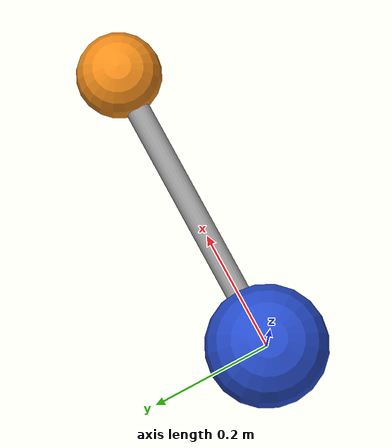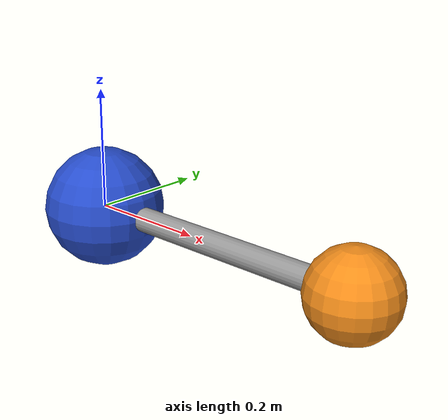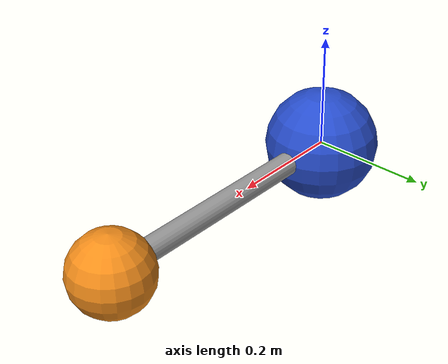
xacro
<?xml version='1.0'?>

<robot name="linked_balls" xmlns:xacro="http://ros.org/wiki/xacro">
	<xacro:property name="mass_1" value="0.06" />
	<xacro:property name="mass_2" value="0.03" />
	<xacro:property name="bar_mass" value="0.01" />
	<xacro:property name="radius_1" value="0.1" />
	<xacro:property name="radius_2" value="0.07" />
	<xacro:property name="bar_radius" value="0.02" />
	<xacro:property name="bar_length" value="0.5" />

	<xacro:macro name="ball" params="link_name radius mass color:=Blue">
		<link name="${link_name}">
			<inertial>
				<mass value="${mass}" />
				<xacro:ball_inertia mass="${mass}" radius="${radius}" />
			</inertial>
			<visual name="${link_name}_visual">
				<geometry>
					<sphere radius="${radius}" />
				</geometry>
			</visual>
			<collision name="${link_name}_collision">
				<geometry>
					<sphere radius="${radius}" />
				</geometry>
				<surface>
					<bounce>
						<restitution_coefficient>0.5</restitution_coefficient>
						<threshold>0</threshold>
					</bounce>
				</surface>
			</collision>
		</link>
		<gazebo reference="${link_name}">
			<material>Gazebo/${color}</material>

		</gazebo>
	</xacro:macro>

	<xacro:macro name="bar" params="link_name radius length mass relative_offset:=0">
		<xacro:property name="bar_geometry">
			<geometry>
				<cylinder length="${length}" radius="${radius}" />
			</geometry>
		</xacro:property>
		<xacro:property name="bar_origin">
			<origin xyz="${relative_offset * length} 0 0" rpy="0 ${pi/2} 0" />
		</xacro:property>
		<link name="${link_name}">
			<inertial>
				<mass value="${mass}" />
				<inertia ixx="${0.5 * mass * radius * radius}" ixy="0" ixz="0" iyy="${mass * (3 * radius * radius + length * length) / 12 + mass * relative_offset * relative_offset * length * length}" iyz="0" izz="${mass * (3 * radius * radius + length * length) / 12 + mass * relative_offset * relative_offset * length * length}" />
			</inertial>
			<visual name="${link_name}_visual">
				<xacro:insert_block name="bar_origin" />
				<xacro:insert_block name="bar_geometry" />
			</visual>
			<collision name="${link_name}_collision">
				<xacro:insert_block name="bar_origin" />
				<xacro:insert_block name="bar_geometry" />
			</collision>
		</link>
		<gazebo reference="${link_name}">
			<material>Gazebo/Gray</material>
		</gazebo>
	</xacro:macro>

	<xacro:macro name="ball_inertia" params="mass radius">
		<xacro:property name="I" value="${0.4 * mass * radius * radius}" />
		<inertia ixx="${I}" ixy="0" ixz="0" iyy="${I}" iyz="0" izz="${I}" />
	</xacro:macro>

	<xacro:ball
		link_name="ball_1"
		radius="${radius_1}"
		mass="${mass_1}" />
	<xacro:ball
		link_name="ball_2"
		radius="${radius_2}"
		mass="${mass_2}"
		color="Orange" />
	<xacro:bar
		link_name="bar"
		radius="${bar_radius}"
		length="${bar_length}"
		mass="${bar_mass}"
		relative_offset="0.5" />

	<joint name="bar_joint_1" type="continuous">
		<origin xyz="0 0 0" rpy="0 0 0" />
		<parent link="ball_1" />
		<axis xyz="1 0 0" />
		<child link="bar" />
		<dynamics damping="0.0" friction="0" />
	</joint>
	<joint name="bar_joint_2" type="continuous">
		<origin xyz="0.5 0 0" rpy="0 0 0" />
		<parent link="bar" />
		<child link="ball_2" />
		<!-- axis xyz="1 0 0" /-->
	</joint>

	<gazebo>
		<plugin name="force_control" filename="libforce_control.so">
			<link>ball_1</link>
		</plugin>
		<plugin name="force_control2" filename="libforce_control.so">
			<link>ball_2</link>
			<force_topic>command/wrench_2</force_topic>
			<odom_topic>odometry_2</odom_topic>
		</plugin>
	</gazebo>

</robot>
